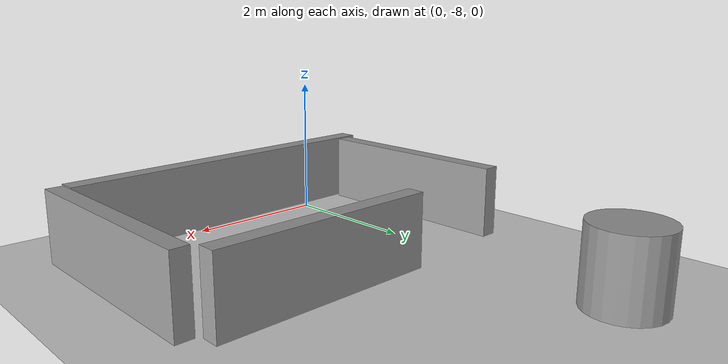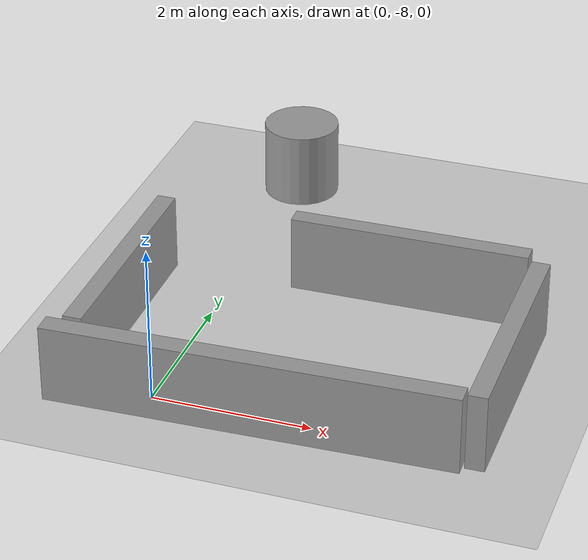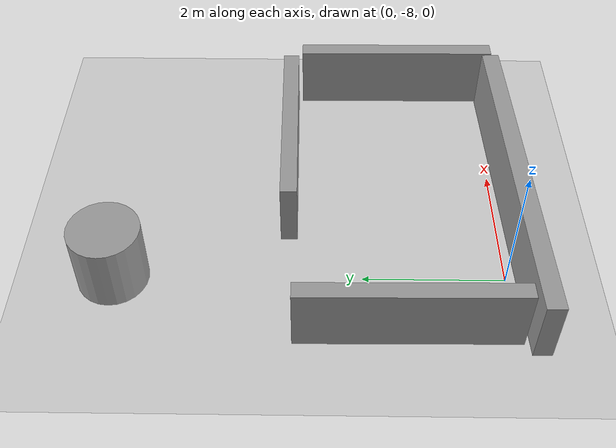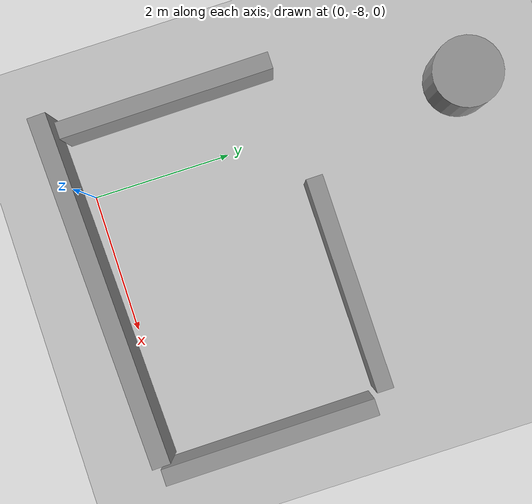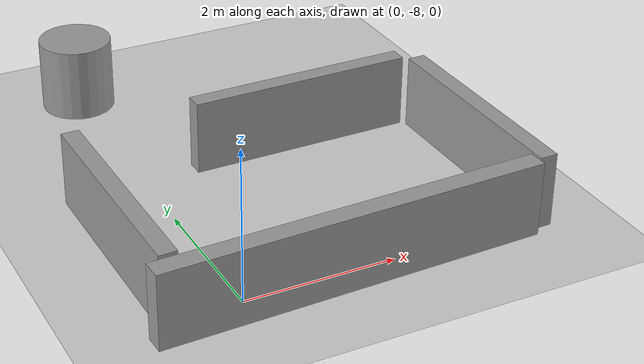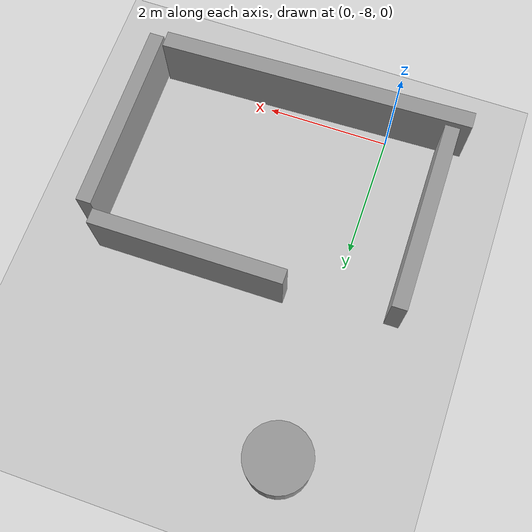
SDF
<sdf version="1.7">
 <world name="default">
  <light name="sun" type="directional">
   <pose>0 0 10 0 -0 0</pose>
   <diffuse>0.8 0.8 0.8 1</diffuse>
   <specular>0.2 0.2 0.2 1</specular>
   <attenuation>
    <range>1000</range>
    <constant>0.9</constant>
    <linear>0.01</linear>
    <quadratic>0.001</quadratic>
   </attenuation>
   <direction>-0.5 0.1 -0.9</direction>
   <spot><inner_angle>0</inner_angle><outer_angle>0</outer_angle><falloff>0</falloff></spot>
  </light>
  <model name="ground_plane">
   <static>1</static>
   <link name="link">
    <collision name="collision">
     <geometry><plane><normal>0 0 1</normal><size>100 100</size></plane></geometry>
     <surface>
      <contact><collide_bitmask>65535</collide_bitmask></contact>
      <friction><ode><mu>100</mu><mu2>50</mu2></ode></friction>
     </surface>
    </collision>
    <visual name="visual">
     <cast_shadows>0</cast_shadows>
     <geometry><plane><normal>0 0 1</normal><size>100 100</size></plane></geometry>
     <material>
      <script><uri>file://media/materials/scripts/gazebo.material</uri><name>Gazebo/Grey</name></script>
     </material>
    </visual>
   </link>
  </model>
  <gravity>0 0 -9.8</gravity>
  <magnetic_field>6e-06 2.3e-05 -4.2e-05</magnetic_field>
  <atmosphere type="adiabatic"/>
  <physics type="ode">
   <max_step_size>0.001</max_step_size>
   <real_time_factor>1</real_time_factor>
   <real_time_update_rate>1000</real_time_update_rate>
  </physics>
  <scene><ambient>0.4 0.4 0.4 1</ambient><background>0.7 0.7 0.7 1</background><shadows>1</shadows></scene>
  <spherical_coordinates>
   <surface_model>EARTH_WGS84</surface_model>
   <latitude_deg>0</latitude_deg>
   <longitude_deg>0</longitude_deg>
   <elevation>0</elevation>
   <heading_deg>0</heading_deg>
  </spherical_coordinates>
  <model name="unit_box_clone">
   <pose>3.99552 -6.64044 0.499805 5e-06 -0.000128 -1.5617</pose>
   <link name="link">
    <inertial>
     <mass>1</mass>
     <inertia>
      <ixx>0.166667</ixx>
      <ixy>0</ixy>
      <ixz>0</ixz>
      <iyy>0.166667</iyy>
      <iyz>0</iyz>
      <izz>0.166667</izz>
     </inertia>
    </inertial>
    <collision name="collision"><geometry><box><size>3.06713 0.238711 1</size></box></geometry></collision>
    <visual name="visual">
     <geometry><box><size>3.06713 0.238711 1</size></box></geometry>
     <material>
      <script><name>Gazebo/Grey</name><uri>file://media/materials/scripts/gazebo.material</uri></script>
     </material>
    </visual>
   </link>
  </model>
  <model name="unit_box_clone_clone">
   <pose>2.27016 -4.94564 0.499805 -5e-06 -0.000128 0.010897</pose>
   <link name="link">
    <inertial>
     <mass>1</mass>
     <inertia>
      <ixx>0.166667</ixx>
      <ixy>0</ixy>
      <ixz>0</ixz>
      <iyy>0.166667</iyy>
      <iyz>0</iyz>
      <izz>0.166667</izz>
     </inertia>
    </inertial>
    <collision name="collision"><geometry><box><size>3.06713 0.238711 1</size></box></geometry></collision>
    <visual name="visual">
     <geometry><box><size>3.06713 0.238711 1</size></box></geometry>
     <material>
      <script><name>Gazebo/Grey</name><uri>file://media/materials/scripts/gazebo.material</uri></script>
     </material>
    </visual>
   </link>
  </model>
  <model name="unit_box_clone_clone_0">
   <pose>-0.951513 -6.57505 0.499805 -5e-06 0.000128 -1.56168</pose>
   <link name="link">
    <inertial>
     <mass>1</mass>
     <inertia>
      <ixx>0.166667</ixx>
      <ixy>0</ixy>
      <ixz>0</ixz>
      <iyy>0.166667</iyy>
      <iyz>0</iyz>
      <izz>0.166667</izz>
     </inertia>
    </inertial>
    <collision name="collision"><geometry><box><size>3.06713 0.238711 1</size></box></geometry></collision>
    <visual name="visual">
     <geometry><box><size>3.06713 0.238711 1</size></box></geometry>
     <material>
      <script><name>Gazebo/Grey</name><uri>file://media/materials/scripts/gazebo.material</uri></script>
     </material>
    </visual>
   </link>
  </model>
  <model name="unit_box">
   <pose>1.3171 -8.2368 0.497716 2.9e-05 0.000901 0.032142</pose>
   <link name="link">
    <inertial>
     <mass>1</mass>
     <inertia>
      <ixx>0.166667</ixx>
      <ixy>0</ixy>
      <ixz>0</ixz>
      <iyy>0.166667</iyy>
      <iyz>0</iyz>
      <izz>0.166667</izz>
     </inertia>
    </inertial>
    <collision name="collision"><geometry><box><size>5.08795 0.266182 1</size></box></geometry></collision>
    <visual name="visual">
     <geometry><box><size>5.08795 0.266182 1</size></box></geometry>
     <material>
      <script><name>Gazebo/Grey</name><uri>file://media/materials/scripts/gazebo.material</uri></script>
     </material>
    </visual>
   </link>
  </model>
  <model name="unit_cylinder">
   <pose>0.006767 -2.51769 0.499997 3e-06 4e-06 -0</pose>
   <link name="link">
    <inertial>
     <mass>1</mass>
     <inertia><ixx>0.145833</ixx><ixy>0</ixy><ixz>0</ixz><iyy>0.145833</iyy><iyz>0</iyz><izz>0.125</izz></inertia>
    </inertial>
    <collision name="collision">
     <geometry><cylinder><radius>0.5</radius><length>1</length></cylinder></geometry>
    </collision>
    <visual name="visual">
     <geometry><cylinder><radius>0.5</radius><length>1</length></cylinder></geometry>
     <material>
      <script><name>Gazebo/Grey</name><uri>file://media/materials/scripts/gazebo.material</uri></script>
     </material>
    </visual>
   </link>
  </model>
 </world>
</sdf>
